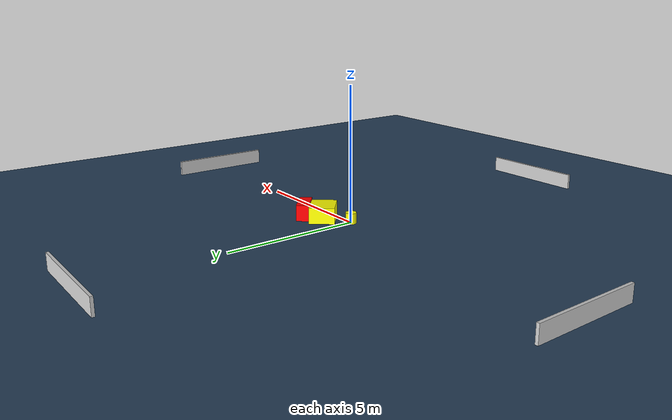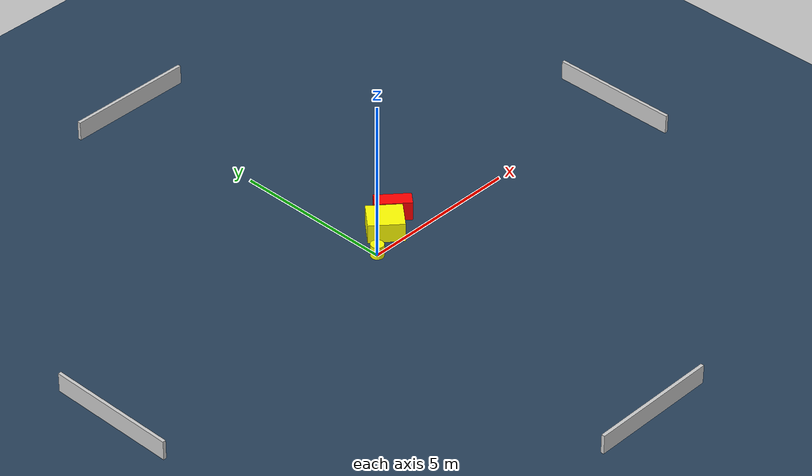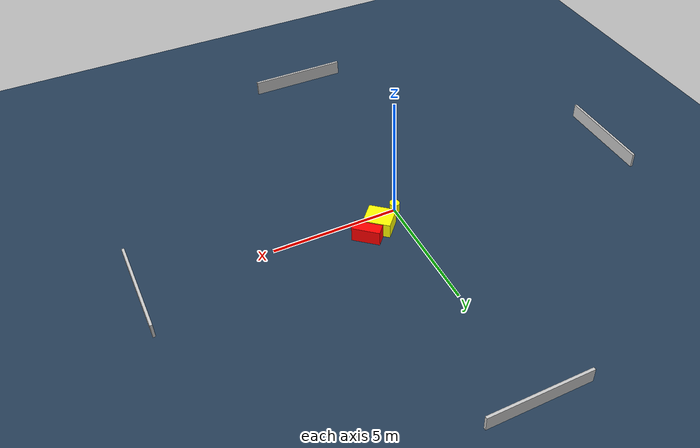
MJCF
<?xml version="1.0" ?>
<mujoco model="generated_environment">
  <option timestep="0.01" integrator="RK4" cone="elliptic"/>
  <default>
    <geom density="1"/>
  </default>
  <asset>
    <texture builtin="gradient" height="3072" name="skybox" rgb1="0.3 0.5 0.7" rgb2="0 0 0" type="skybox" width="512"/>
    <texture builtin="checker" height="300" name="groundplane" rgb1="0.2 0.3 0.4" rgb2="0.1 0.2 0.3" type="2d" width="300"/>
    <material name="groundplane" reflectance="0.2" texrepeat="5 5" texture="groundplane"/>
  </asset>
  <worldbody>
    <light dir="0 0 -1" directional="true" pos="0 0 1.5"/>
    <geom condim="3" friction="0.5 0.005 0.001" material="groundplane" name="floor" pos="0 0 0" size="0 0 0.05" type="plane"/>
    <body name="walls">
      <geom name="wall_1" condim="4" pos="-10.0 0.0 0.3" rgba="0.800000011920929 0.800000011920929 0.800000011920929 1.0" size="0.05 2.0 0.3" type="box"/>
      <geom name="wall_2" condim="4" pos="10.0 0.0 0.3" rgba="0.800000011920929 0.800000011920929 0.800000011920929 1.0" size="0.05 2.0 0.3" type="box"/>
      <geom name="wall_3" condim="4" pos="0.0 -10.0 0.3" rgba="0.800000011920929 0.800000011920929 0.800000011920929 1.0" size="2.0 0.05 0.3" type="box"/>
      <geom name="wall_4" condim="4" pos="0.0 10.0 0.3" rgba="0.800000011920929 0.800000011920929 0.800000011920929 1.0" size="2.0 0.05 0.3" type="box"/>
    </body>
    <body name="robot">
      <joint name="joint_x" type="slide" pos="0 0 0" axis="1 0 0"/>
      <joint name="joint_y" type="slide" pos="0 0 0" axis="0 1 0"/>
      <geom name="robot" type="cylinder" pos="0.0 0.0 0.2" size="0.2 0.2 0.0" mass="5.0" friction="1.0 0.005 0.0001" condim="4" rgba="1.0 1.0 0.0 1.0"/>
    </body>
    <body name="obstacle_1_movable">
      <geom name="obstacle_1_movable" condim="4" pos="0.9266492245033816 0.5821638799139194 0.3" euler="0 0 48.592196103579326" friction="0.0 0.005 0.001" rgba="1.0 1.0 0.0 1.0" size="0.46894697368200605 0.5330230176030832 0.3" type="box" mass="0.1"/>
      <joint type="free"/>
    </body>
    <body name="obstacle_2_static">
      <geom name="obstacle_2_static" condim="4" pos="1.61905507922336 0.9467556812074831 0.3" euler="0 0 228.66812951018858" friction="0.0 0.005 0.001" rgba="1.0 0.0 0.0 1.0" size="0.22834758794991117 0.5471120550423443 0.3" type="box"/>
    </body>
  </worldbody>
  <actuator>
    <motor name="actuator_x" joint="joint_x" gear="1" ctrlrange="-1 1"/>
    <motor name="actuator_y" joint="joint_y" gear="1" ctrlrange="-1 1"/>
  </actuator>
</mujoco>
